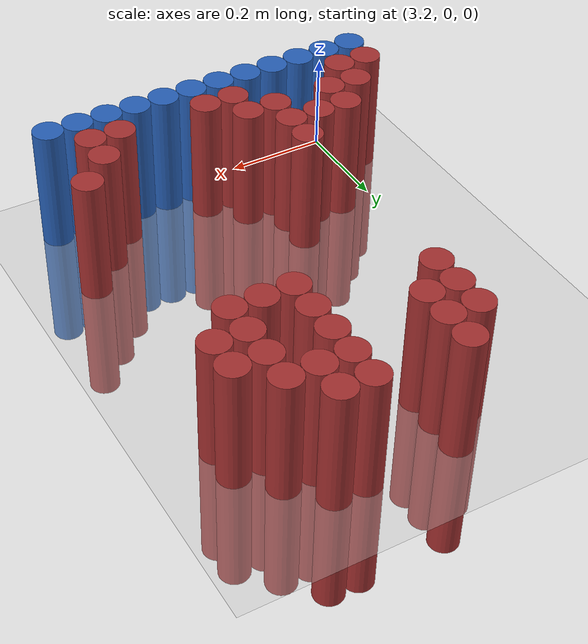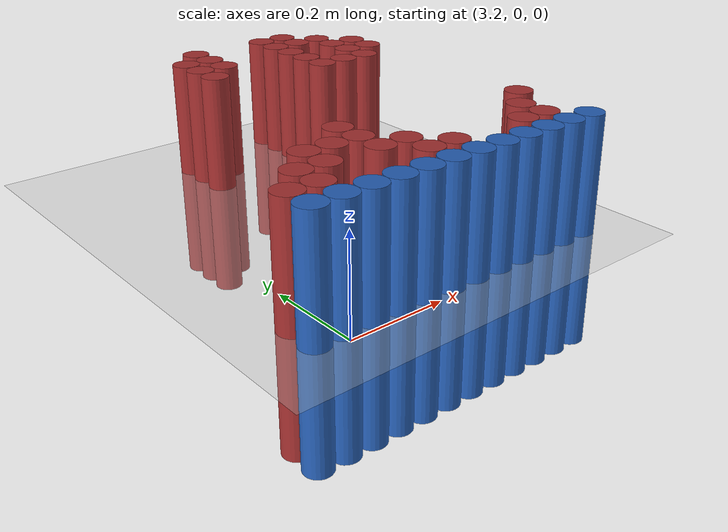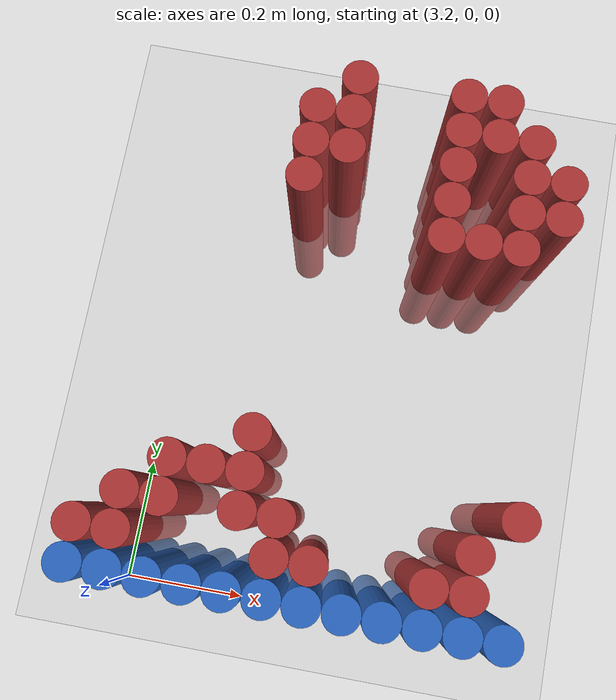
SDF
<sdf version="1.6">
 <world name="default">
  <model name="ground_plane">
   <static>1</static>
   <link name="link">
    <collision name="collision">
     <geometry><plane><normal>0 0 1</normal><size>100 100</size></plane></geometry>
     <surface><friction><ode><mu>100</mu><mu2>50</mu2></ode></friction></surface>
    </collision>
    <visual name="visual">
     <cast_shadows>0</cast_shadows>
     <geometry><plane><normal>0 0 1</normal><size>100 100</size></plane></geometry>
     <material>
      <script><uri>file://media/materials/scripts/gazebo.material</uri><name>Gazebo/Grey</name></script>
     </material>
    </visual>
   </link>
  </model>
  <model name="unit_cylinder_227">
   <static>1</static>
   <pose>3.450000 0.870000 0.000000 0.000000 0.000000 0.000000</pose>
   <link name="link">
    <inertial>
     <mass>1</mass>
     <inertia><ixx>0.145833</ixx><ixy>0</ixy><ixz>0</ixz><iyy>0.145833</iyy><iyz>0</iyz><izz>0.125</izz></inertia>
    </inertial>
    <collision name="collision">
     <geometry><cylinder><radius>0.030000</radius><length>0.5</length></cylinder></geometry>
    </collision>
    <visual name="visual">
     <geometry><cylinder><radius>0.030000</radius><length>0.5</length></cylinder></geometry>
     <material>
      <ambient>0.648000 0.192000 0.192000 1</ambient>
      <diffuse>0.648000 0.192000 0.192000 1</diffuse>
     </material>
     <material>
      <script><name>Gazebo/Grey</name><uri>file://media/materials/scripts/gazebo.material</uri></script>
     </material>
    </visual>
   </link>
  </model>
  <model name="unit_cylinder_228">
   <static>1</static>
   <pose>3.630000 0.870000 0.000000 0.000000 0.000000 0.000000</pose>
   <link name="link">
    <inertial>
     <mass>1</mass>
     <inertia><ixx>0.145833</ixx><ixy>0</ixy><ixz>0</ixz><iyy>0.145833</iyy><iyz>0</iyz><izz>0.125</izz></inertia>
    </inertial>
    <collision name="collision">
     <geometry><cylinder><radius>0.030000</radius><length>0.5</length></cylinder></geometry>
    </collision>
    <visual name="visual">
     <geometry><cylinder><radius>0.030000</radius><length>0.5</length></cylinder></geometry>
     <material>
      <ambient>0.648000 0.192000 0.192000 1</ambient>
      <diffuse>0.648000 0.192000 0.192000 1</diffuse>
     </material>
     <material>
      <script><name>Gazebo/Grey</name><uri>file://media/materials/scripts/gazebo.material</uri></script>
     </material>
    </visual>
   </link>
  </model>
  <model name="unit_cylinder_229">
   <static>1</static>
   <pose>3.690000 0.870000 0.000000 0.000000 0.000000 0.000000</pose>
   <link name="link">
    <inertial>
     <mass>1</mass>
     <inertia><ixx>0.145833</ixx><ixy>0</ixy><ixz>0</ixz><iyy>0.145833</iyy><iyz>0</iyz><izz>0.125</izz></inertia>
    </inertial>
    <collision name="collision">
     <geometry><cylinder><radius>0.030000</radius><length>0.5</length></cylinder></geometry>
    </collision>
    <visual name="visual">
     <geometry><cylinder><radius>0.030000</radius><length>0.5</length></cylinder></geometry>
     <material>
      <ambient>0.648000 0.192000 0.192000 1</ambient>
      <diffuse>0.648000 0.192000 0.192000 1</diffuse>
     </material>
     <material>
      <script><name>Gazebo/Grey</name><uri>file://media/materials/scripts/gazebo.material</uri></script>
     </material>
    </visual>
   </link>
  </model>
  <model name="unit_cylinder_234">
   <static>1</static>
   <pose>3.390000 0.810000 0.000000 0.000000 0.000000 0.000000</pose>
   <link name="link">
    <inertial>
     <mass>1</mass>
     <inertia><ixx>0.145833</ixx><ixy>0</ixy><ixz>0</ixz><iyy>0.145833</iyy><iyz>0</iyz><izz>0.125</izz></inertia>
    </inertial>
    <collision name="collision">
     <geometry><cylinder><radius>0.030000</radius><length>0.5</length></cylinder></geometry>
    </collision>
    <visual name="visual">
     <geometry><cylinder><radius>0.030000</radius><length>0.5</length></cylinder></geometry>
     <material>
      <ambient>0.648000 0.192000 0.192000 1</ambient>
      <diffuse>0.648000 0.192000 0.192000 1</diffuse>
     </material>
     <material>
      <script><name>Gazebo/Grey</name><uri>file://media/materials/scripts/gazebo.material</uri></script>
     </material>
    </visual>
   </link>
  </model>
  <model name="unit_cylinder_235">
   <static>1</static>
   <pose>3.450000 0.810000 0.000000 0.000000 0.000000 0.000000</pose>
   <link name="link">
    <inertial>
     <mass>1</mass>
     <inertia><ixx>0.145833</ixx><ixy>0</ixy><ixz>0</ixz><iyy>0.145833</iyy><iyz>0</iyz><izz>0.125</izz></inertia>
    </inertial>
    <collision name="collision">
     <geometry><cylinder><radius>0.030000</radius><length>0.5</length></cylinder></geometry>
    </collision>
    <visual name="visual">
     <geometry><cylinder><radius>0.030000</radius><length>0.5</length></cylinder></geometry>
     <material>
      <ambient>0.648000 0.192000 0.192000 1</ambient>
      <diffuse>0.648000 0.192000 0.192000 1</diffuse>
     </material>
     <material>
      <script><name>Gazebo/Grey</name><uri>file://media/materials/scripts/gazebo.material</uri></script>
     </material>
    </visual>
   </link>
  </model>
  <model name="unit_cylinder_236">
   <static>1</static>
   <pose>3.630000 0.810000 0.000000 0.000000 0.000000 0.000000</pose>
   <link name="link">
    <inertial>
     <mass>1</mass>
     <inertia><ixx>0.145833</ixx><ixy>0</ixy><ixz>0</ixz><iyy>0.145833</iyy><iyz>0</iyz><izz>0.125</izz></inertia>
    </inertial>
    <collision name="collision">
     <geometry><cylinder><radius>0.030000</radius><length>0.5</length></cylinder></geometry>
    </collision>
    <visual name="visual">
     <geometry><cylinder><radius>0.030000</radius><length>0.5</length></cylinder></geometry>
     <material>
      <ambient>0.648000 0.192000 0.192000 1</ambient>
      <diffuse>0.648000 0.192000 0.192000 1</diffuse>
     </material>
     <material>
      <script><name>Gazebo/Grey</name><uri>file://media/materials/scripts/gazebo.material</uri></script>
     </material>
    </visual>
   </link>
  </model>
  <model name="unit_cylinder_237">
   <static>1</static>
   <pose>3.690000 0.810000 0.000000 0.000000 0.000000 0.000000</pose>
   <link name="link">
    <inertial>
     <mass>1</mass>
     <inertia><ixx>0.145833</ixx><ixy>0</ixy><ixz>0</ixz><iyy>0.145833</iyy><iyz>0</iyz><izz>0.125</izz></inertia>
    </inertial>
    <collision name="collision">
     <geometry><cylinder><radius>0.030000</radius><length>0.5</length></cylinder></geometry>
    </collision>
    <visual name="visual">
     <geometry><cylinder><radius>0.030000</radius><length>0.5</length></cylinder></geometry>
     <material>
      <ambient>0.648000 0.192000 0.192000 1</ambient>
      <diffuse>0.648000 0.192000 0.192000 1</diffuse>
     </material>
     <material>
      <script><name>Gazebo/Grey</name><uri>file://media/materials/scripts/gazebo.material</uri></script>
     </material>
    </visual>
   </link>
  </model>
  <model name="unit_cylinder_238">
   <static>1</static>
   <pose>3.750000 0.810000 0.000000 0.000000 0.000000 0.000000</pose>
   <link name="link">
    <inertial>
     <mass>1</mass>
     <inertia><ixx>0.145833</ixx><ixy>0</ixy><ixz>0</ixz><iyy>0.145833</iyy><iyz>0</iyz><izz>0.125</izz></inertia>
    </inertial>
    <collision name="collision">
     <geometry><cylinder><radius>0.030000</radius><length>0.5</length></cylinder></geometry>
    </collision>
    <visual name="visual">
     <geometry><cylinder><radius>0.030000</radius><length>0.5</length></cylinder></geometry>
     <material>
      <ambient>0.648000 0.192000 0.192000 1</ambient>
      <diffuse>0.648000 0.192000 0.192000 1</diffuse>
     </material>
     <material>
      <script><name>Gazebo/Grey</name><uri>file://media/materials/scripts/gazebo.material</uri></script>
     </material>
    </visual>
   </link>
  </model>
  <model name="unit_cylinder_242">
   <static>1</static>
   <pose>3.390000 0.750000 0.000000 0.000000 0.000000 0.000000</pose>
   <link name="link">
    <inertial>
     <mass>1</mass>
     <inertia><ixx>0.145833</ixx><ixy>0</ixy><ixz>0</ixz><iyy>0.145833</iyy><iyz>0</iyz><izz>0.125</izz></inertia>
    </inertial>
    <collision name="collision">
     <geometry><cylinder><radius>0.030000</radius><length>0.5</length></cylinder></geometry>
    </collision>
    <visual name="visual">
     <geometry><cylinder><radius>0.030000</radius><length>0.5</length></cylinder></geometry>
     <material>
      <ambient>0.648000 0.192000 0.192000 1</ambient>
      <diffuse>0.648000 0.192000 0.192000 1</diffuse>
     </material>
     <material>
      <script><name>Gazebo/Grey</name><uri>file://media/materials/scripts/gazebo.material</uri></script>
     </material>
    </visual>
   </link>
  </model>
  <model name="unit_cylinder_243">
   <static>1</static>
   <pose>3.450000 0.750000 0.000000 0.000000 0.000000 0.000000</pose>
   <link name="link">
    <inertial>
     <mass>1</mass>
     <inertia><ixx>0.145833</ixx><ixy>0</ixy><ixz>0</ixz><iyy>0.145833</iyy><iyz>0</iyz><izz>0.125</izz></inertia>
    </inertial>
    <collision name="collision">
     <geometry><cylinder><radius>0.030000</radius><length>0.5</length></cylinder></geometry>
    </collision>
    <visual name="visual">
     <geometry><cylinder><radius>0.030000</radius><length>0.5</length></cylinder></geometry>
     <material>
      <ambient>0.648000 0.192000 0.192000 1</ambient>
      <diffuse>0.648000 0.192000 0.192000 1</diffuse>
     </material>
     <material>
      <script><name>Gazebo/Grey</name><uri>file://media/materials/scripts/gazebo.material</uri></script>
     </material>
    </visual>
   </link>
  </model>
  <model name="unit_cylinder_244">
   <static>1</static>
   <pose>3.630000 0.750000 0.000000 0.000000 0.000000 0.000000</pose>
   <link name="link">
    <inertial>
     <mass>1</mass>
     <inertia><ixx>0.145833</ixx><ixy>0</ixy><ixz>0</ixz><iyy>0.145833</iyy><iyz>0</iyz><izz>0.125</izz></inertia>
    </inertial>
    <collision name="collision">
     <geometry><cylinder><radius>0.030000</radius><length>0.5</length></cylinder></geometry>
    </collision>
    <visual name="visual">
     <geometry><cylinder><radius>0.030000</radius><length>0.5</length></cylinder></geometry>
     <material>
      <ambient>0.648000 0.192000 0.192000 1</ambient>
      <diffuse>0.648000 0.192000 0.192000 1</diffuse>
     </material>
     <material>
      <script><name>Gazebo/Grey</name><uri>file://media/materials/scripts/gazebo.material</uri></script>
     </material>
    </visual>
   </link>
  </model>
  <model name="unit_cylinder_245">
   <static>1</static>
   <pose>3.750000 0.750000 0.000000 0.000000 0.000000 0.000000</pose>
   <link name="link">
    <inertial>
     <mass>1</mass>
     <inertia><ixx>0.145833</ixx><ixy>0</ixy><ixz>0</ixz><iyy>0.145833</iyy><iyz>0</iyz><izz>0.125</izz></inertia>
    </inertial>
    <collision name="collision">
     <geometry><cylinder><radius>0.030000</radius><length>0.5</length></cylinder></geometry>
    </collision>
    <visual name="visual">
     <geometry><cylinder><radius>0.030000</radius><length>0.5</length></cylinder></geometry>
     <material>
      <ambient>0.648000 0.192000 0.192000 1</ambient>
      <diffuse>0.648000 0.192000 0.192000 1</diffuse>
     </material>
     <material>
      <script><name>Gazebo/Grey</name><uri>file://media/materials/scripts/gazebo.material</uri></script>
     </material>
    </visual>
   </link>
  </model>
  <model name="unit_cylinder_246">
   <static>1</static>
   <pose>3.810000 0.750000 0.000000 0.000000 0.000000 0.000000</pose>
   <link name="link">
    <inertial>
     <mass>1</mass>
     <inertia><ixx>0.145833</ixx><ixy>0</ixy><ixz>0</ixz><iyy>0.145833</iyy><iyz>0</iyz><izz>0.125</izz></inertia>
    </inertial>
    <collision name="collision">
     <geometry><cylinder><radius>0.030000</radius><length>0.5</length></cylinder></geometry>
    </collision>
    <visual name="visual">
     <geometry><cylinder><radius>0.030000</radius><length>0.5</length></cylinder></geometry>
     <material>
      <ambient>0.648000 0.192000 0.192000 1</ambient>
      <diffuse>0.648000 0.192000 0.192000 1</diffuse>
     </material>
     <material>
      <script><name>Gazebo/Grey</name><uri>file://media/materials/scripts/gazebo.material</uri></script>
     </material>
    </visual>
   </link>
  </model>
  <model name="unit_cylinder_250">
   <static>1</static>
   <pose>3.390000 0.690000 0.000000 0.000000 0.000000 0.000000</pose>
   <link name="link">
    <inertial>
     <mass>1</mass>
     <inertia><ixx>0.145833</ixx><ixy>0</ixy><ixz>0</ixz><iyy>0.145833</iyy><iyz>0</iyz><izz>0.125</izz></inertia>
    </inertial>
    <collision name="collision">
     <geometry><cylinder><radius>0.030000</radius><length>0.5</length></cylinder></geometry>
    </collision>
    <visual name="visual">
     <geometry><cylinder><radius>0.030000</radius><length>0.5</length></cylinder></geometry>
     <material>
      <ambient>0.648000 0.192000 0.192000 1</ambient>
      <diffuse>0.648000 0.192000 0.192000 1</diffuse>
     </material>
     <material>
      <script><name>Gazebo/Grey</name><uri>file://media/materials/scripts/gazebo.material</uri></script>
     </material>
    </visual>
   </link>
  </model>
  <model name="unit_cylinder_251">
   <static>1</static>
   <pose>3.630000 0.690000 0.000000 0.000000 0.000000 0.000000</pose>
   <link name="link">
    <inertial>
     <mass>1</mass>
     <inertia><ixx>0.145833</ixx><ixy>0</ixy><ixz>0</ixz><iyy>0.145833</iyy><iyz>0</iyz><izz>0.125</izz></inertia>
    </inertial>
    <collision name="collision">
     <geometry><cylinder><radius>0.030000</radius><length>0.5</length></cylinder></geometry>
    </collision>
    <visual name="visual">
     <geometry><cylinder><radius>0.030000</radius><length>0.5</length></cylinder></geometry>
     <material>
      <ambient>0.648000 0.192000 0.192000 1</ambient>
      <diffuse>0.648000 0.192000 0.192000 1</diffuse>
     </material>
     <material>
      <script><name>Gazebo/Grey</name><uri>file://media/materials/scripts/gazebo.material</uri></script>
     </material>
    </visual>
   </link>
  </model>
  <model name="unit_cylinder_252">
   <static>1</static>
   <pose>3.750000 0.690000 0.000000 0.000000 0.000000 0.000000</pose>
   <link name="link">
    <inertial>
     <mass>1</mass>
     <inertia><ixx>0.145833</ixx><ixy>0</ixy><ixz>0</ixz><iyy>0.145833</iyy><iyz>0</iyz><izz>0.125</izz></inertia>
    </inertial>
    <collision name="collision">
     <geometry><cylinder><radius>0.030000</radius><length>0.5</length></cylinder></geometry>
    </collision>
    <visual name="visual">
     <geometry><cylinder><radius>0.030000</radius><length>0.5</length></cylinder></geometry>
     <material>
      <ambient>0.648000 0.192000 0.192000 1</ambient>
      <diffuse>0.648000 0.192000 0.192000 1</diffuse>
     </material>
     <material>
      <script><name>Gazebo/Grey</name><uri>file://media/materials/scripts/gazebo.material</uri></script>
     </material>
    </visual>
   </link>
  </model>
  <model name="unit_cylinder_253">
   <static>1</static>
   <pose>3.810000 0.690000 0.000000 0.000000 0.000000 0.000000</pose>
   <link name="link">
    <inertial>
     <mass>1</mass>
     <inertia><ixx>0.145833</ixx><ixy>0</ixy><ixz>0</ixz><iyy>0.145833</iyy><iyz>0</iyz><izz>0.125</izz></inertia>
    </inertial>
    <collision name="collision">
     <geometry><cylinder><radius>0.030000</radius><length>0.5</length></cylinder></geometry>
    </collision>
    <visual name="visual">
     <geometry><cylinder><radius>0.030000</radius><length>0.5</length></cylinder></geometry>
     <material>
      <ambient>0.648000 0.192000 0.192000 1</ambient>
      <diffuse>0.648000 0.192000 0.192000 1</diffuse>
     </material>
     <material>
      <script><name>Gazebo/Grey</name><uri>file://media/materials/scripts/gazebo.material</uri></script>
     </material>
    </visual>
   </link>
  </model>
  <model name="unit_cylinder_256">
   <static>1</static>
   <pose>3.630000 0.630000 0.000000 0.000000 0.000000 0.000000</pose>
   <link name="link">
    <inertial>
     <mass>1</mass>
     <inertia><ixx>0.145833</ixx><ixy>0</ixy><ixz>0</ixz><iyy>0.145833</iyy><iyz>0</iyz><izz>0.125</izz></inertia>
    </inertial>
    <collision name="collision">
     <geometry><cylinder><radius>0.030000</radius><length>0.5</length></cylinder></geometry>
    </collision>
    <visual name="visual">
     <geometry><cylinder><radius>0.030000</radius><length>0.5</length></cylinder></geometry>
     <material>
      <ambient>0.648000 0.192000 0.192000 1</ambient>
      <diffuse>0.648000 0.192000 0.192000 1</diffuse>
     </material>
     <material>
      <script><name>Gazebo/Grey</name><uri>file://media/materials/scripts/gazebo.material</uri></script>
     </material>
    </visual>
   </link>
  </model>
  <model name="unit_cylinder_257">
   <static>1</static>
   <pose>3.690000 0.630000 0.000000 0.000000 0.000000 0.000000</pose>
   <link name="link">
    <inertial>
     <mass>1</mass>
     <inertia><ixx>0.145833</ixx><ixy>0</ixy><ixz>0</ixz><iyy>0.145833</iyy><iyz>0</iyz><izz>0.125</izz></inertia>
    </inertial>
    <collision name="collision">
     <geometry><cylinder><radius>0.030000</radius><length>0.5</length></cylinder></geometry>
    </collision>
    <visual name="visual">
     <geometry><cylinder><radius>0.030000</radius><length>0.5</length></cylinder></geometry>
     <material>
      <ambient>0.648000 0.192000 0.192000 1</ambient>
      <diffuse>0.648000 0.192000 0.192000 1</diffuse>
     </material>
     <material>
      <script><name>Gazebo/Grey</name><uri>file://media/materials/scripts/gazebo.material</uri></script>
     </material>
    </visual>
   </link>
  </model>
  <model name="unit_cylinder_258">
   <static>1</static>
   <pose>3.750000 0.630000 0.000000 0.000000 0.000000 0.000000</pose>
   <link name="link">
    <inertial>
     <mass>1</mass>
     <inertia><ixx>0.145833</ixx><ixy>0</ixy><ixz>0</ixz><iyy>0.145833</iyy><iyz>0</iyz><izz>0.125</izz></inertia>
    </inertial>
    <collision name="collision">
     <geometry><cylinder><radius>0.030000</radius><length>0.5</length></cylinder></geometry>
    </collision>
    <visual name="visual">
     <geometry><cylinder><radius>0.030000</radius><length>0.5</length></cylinder></geometry>
     <material>
      <ambient>0.648000 0.192000 0.192000 1</ambient>
      <diffuse>0.648000 0.192000 0.192000 1</diffuse>
     </material>
     <material>
      <script><name>Gazebo/Grey</name><uri>file://media/materials/scripts/gazebo.material</uri></script>
     </material>
    </visual>
   </link>
  </model>
  <model name="unit_cylinder_278">
   <static>1</static>
   <pose>3.390000 0.270000 0.000000 0.000000 0.000000 0.000000</pose>
   <link name="link">
    <inertial>
     <mass>1</mass>
     <inertia><ixx>0.145833</ixx><ixy>0</ixy><ixz>0</ixz><iyy>0.145833</iyy><iyz>0</iyz><izz>0.125</izz></inertia>
    </inertial>
    <collision name="collision">
     <geometry><cylinder><radius>0.030000</radius><length>0.5</length></cylinder></geometry>
    </collision>
    <visual name="visual">
     <geometry><cylinder><radius>0.030000</radius><length>0.5</length></cylinder></geometry>
     <material>
      <ambient>0.648000 0.192000 0.192000 1</ambient>
      <diffuse>0.648000 0.192000 0.192000 1</diffuse>
     </material>
     <material>
      <script><name>Gazebo/Grey</name><uri>file://media/materials/scripts/gazebo.material</uri></script>
     </material>
    </visual>
   </link>
  </model>
  <model name="unit_cylinder_280">
   <static>1</static>
   <pose>3.270000 0.210000 0.000000 0.000000 0.000000 0.000000</pose>
   <link name="link">
    <inertial>
     <mass>1</mass>
     <inertia><ixx>0.145833</ixx><ixy>0</ixy><ixz>0</ixz><iyy>0.145833</iyy><iyz>0</iyz><izz>0.125</izz></inertia>
    </inertial>
    <collision name="collision">
     <geometry><cylinder><radius>0.030000</radius><length>0.5</length></cylinder></geometry>
    </collision>
    <visual name="visual">
     <geometry><cylinder><radius>0.030000</radius><length>0.5</length></cylinder></geometry>
     <material>
      <ambient>0.648000 0.192000 0.192000 1</ambient>
      <diffuse>0.648000 0.192000 0.192000 1</diffuse>
     </material>
     <material>
      <script><name>Gazebo/Grey</name><uri>file://media/materials/scripts/gazebo.material</uri></script>
     </material>
    </visual>
   </link>
  </model>
  <model name="unit_cylinder_281">
   <static>1</static>
   <pose>3.330000 0.210000 0.000000 0.000000 0.000000 0.000000</pose>
   <link name="link">
    <inertial>
     <mass>1</mass>
     <inertia><ixx>0.145833</ixx><ixy>0</ixy><ixz>0</ixz><iyy>0.145833</iyy><iyz>0</iyz><izz>0.125</izz></inertia>
    </inertial>
    <collision name="collision">
     <geometry><cylinder><radius>0.030000</radius><length>0.5</length></cylinder></geometry>
    </collision>
    <visual name="visual">
     <geometry><cylinder><radius>0.030000</radius><length>0.5</length></cylinder></geometry>
     <material>
      <ambient>0.648000 0.192000 0.192000 1</ambient>
      <diffuse>0.648000 0.192000 0.192000 1</diffuse>
     </material>
     <material>
      <script><name>Gazebo/Grey</name><uri>file://media/materials/scripts/gazebo.material</uri></script>
     </material>
    </visual>
   </link>
  </model>
  <model name="unit_cylinder_282">
   <static>1</static>
   <pose>3.390000 0.210000 0.000000 0.000000 0.000000 0.000000</pose>
   <link name="link">
    <inertial>
     <mass>1</mass>
     <inertia><ixx>0.145833</ixx><ixy>0</ixy><ixz>0</ixz><iyy>0.145833</iyy><iyz>0</iyz><izz>0.125</izz></inertia>
    </inertial>
    <collision name="collision">
     <geometry><cylinder><radius>0.030000</radius><length>0.5</length></cylinder></geometry>
    </collision>
    <visual name="visual">
     <geometry><cylinder><radius>0.030000</radius><length>0.5</length></cylinder></geometry>
     <material>
      <ambient>0.648000 0.192000 0.192000 1</ambient>
      <diffuse>0.648000 0.192000 0.192000 1</diffuse>
     </material>
     <material>
      <script><name>Gazebo/Grey</name><uri>file://media/materials/scripts/gazebo.material</uri></script>
     </material>
    </visual>
   </link>
  </model>
  <model name="unit_cylinder_283">
   <static>1</static>
   <pose>3.810000 0.210000 0.000000 0.000000 0.000000 0.000000</pose>
   <link name="link">
    <inertial>
     <mass>1</mass>
     <inertia><ixx>0.145833</ixx><ixy>0</ixy><ixz>0</ixz><iyy>0.145833</iyy><iyz>0</iyz><izz>0.125</izz></inertia>
    </inertial>
    <collision name="collision">
     <geometry><cylinder><radius>0.030000</radius><length>0.5</length></cylinder></geometry>
    </collision>
    <visual name="visual">
     <geometry><cylinder><radius>0.030000</radius><length>0.5</length></cylinder></geometry>
     <material>
      <ambient>0.648000 0.192000 0.192000 1</ambient>
      <diffuse>0.648000 0.192000 0.192000 1</diffuse>
     </material>
     <material>
      <script><name>Gazebo/Grey</name><uri>file://media/materials/scripts/gazebo.material</uri></script>
     </material>
    </visual>
   </link>
  </model>
  <model name="unit_cylinder_287">
   <static>1</static>
   <pose>3.210000 0.150000 0.000000 0.000000 0.000000 0.000000</pose>
   <link name="link">
    <inertial>
     <mass>1</mass>
     <inertia><ixx>0.145833</ixx><ixy>0</ixy><ixz>0</ixz><iyy>0.145833</iyy><iyz>0</iyz><izz>0.125</izz></inertia>
    </inertial>
    <collision name="collision">
     <geometry><cylinder><radius>0.030000</radius><length>0.5</length></cylinder></geometry>
    </collision>
    <visual name="visual">
     <geometry><cylinder><radius>0.030000</radius><length>0.5</length></cylinder></geometry>
     <material>
      <ambient>0.648000 0.192000 0.192000 1</ambient>
      <diffuse>0.648000 0.192000 0.192000 1</diffuse>
     </material>
     <material>
      <script><name>Gazebo/Grey</name><uri>file://media/materials/scripts/gazebo.material</uri></script>
     </material>
    </visual>
   </link>
  </model>
  <model name="unit_cylinder_288">
   <static>1</static>
   <pose>3.270000 0.150000 0.000000 0.000000 0.000000 0.000000</pose>
   <link name="link">
    <inertial>
     <mass>1</mass>
     <inertia><ixx>0.145833</ixx><ixy>0</ixy><ixz>0</ixz><iyy>0.145833</iyy><iyz>0</iyz><izz>0.125</izz></inertia>
    </inertial>
    <collision name="collision">
     <geometry><cylinder><radius>0.030000</radius><length>0.5</length></cylinder></geometry>
    </collision>
    <visual name="visual">
     <geometry><cylinder><radius>0.030000</radius><length>0.5</length></cylinder></geometry>
     <material>
      <ambient>0.648000 0.192000 0.192000 1</ambient>
      <diffuse>0.648000 0.192000 0.192000 1</diffuse>
     </material>
     <material>
      <script><name>Gazebo/Grey</name><uri>file://media/materials/scripts/gazebo.material</uri></script>
     </material>
    </visual>
   </link>
  </model>
  <model name="unit_cylinder_289">
   <static>1</static>
   <pose>3.390000 0.150000 0.000000 0.000000 0.000000 0.000000</pose>
   <link name="link">
    <inertial>
     <mass>1</mass>
     <inertia><ixx>0.145833</ixx><ixy>0</ixy><ixz>0</ixz><iyy>0.145833</iyy><iyz>0</iyz><izz>0.125</izz></inertia>
    </inertial>
    <collision name="collision">
     <geometry><cylinder><radius>0.030000</radius><length>0.5</length></cylinder></geometry>
    </collision>
    <visual name="visual">
     <geometry><cylinder><radius>0.030000</radius><length>0.5</length></cylinder></geometry>
     <material>
      <ambient>0.648000 0.192000 0.192000 1</ambient>
      <diffuse>0.648000 0.192000 0.192000 1</diffuse>
     </material>
     <material>
      <script><name>Gazebo/Grey</name><uri>file://media/materials/scripts/gazebo.material</uri></script>
     </material>
    </visual>
   </link>
  </model>
  <model name="unit_cylinder_290">
   <static>1</static>
   <pose>3.450000 0.150000 0.000000 0.000000 0.000000 0.000000</pose>
   <link name="link">
    <inertial>
     <mass>1</mass>
     <inertia><ixx>0.145833</ixx><ixy>0</ixy><ixz>0</ixz><iyy>0.145833</iyy><iyz>0</iyz><izz>0.125</izz></inertia>
    </inertial>
    <collision name="collision">
     <geometry><cylinder><radius>0.030000</radius><length>0.5</length></cylinder></geometry>
    </collision>
    <visual name="visual">
     <geometry><cylinder><radius>0.030000</radius><length>0.5</length></cylinder></geometry>
     <material>
      <ambient>0.648000 0.192000 0.192000 1</ambient>
      <diffuse>0.648000 0.192000 0.192000 1</diffuse>
     </material>
     <material>
      <script><name>Gazebo/Grey</name><uri>file://media/materials/scripts/gazebo.material</uri></script>
     </material>
    </visual>
   </link>
  </model>
  <model name="unit_cylinder_291">
   <static>1</static>
   <pose>3.750000 0.150000 0.000000 0.000000 0.000000 0.000000</pose>
   <link name="link">
    <inertial>
     <mass>1</mass>
     <inertia><ixx>0.145833</ixx><ixy>0</ixy><ixz>0</ixz><iyy>0.145833</iyy><iyz>0</iyz><izz>0.125</izz></inertia>
    </inertial>
    <collision name="collision">
     <geometry><cylinder><radius>0.030000</radius><length>0.5</length></cylinder></geometry>
    </collision>
    <visual name="visual">
     <geometry><cylinder><radius>0.030000</radius><length>0.5</length></cylinder></geometry>
     <material>
      <ambient>0.648000 0.192000 0.192000 1</ambient>
      <diffuse>0.648000 0.192000 0.192000 1</diffuse>
     </material>
     <material>
      <script><name>Gazebo/Grey</name><uri>file://media/materials/scripts/gazebo.material</uri></script>
     </material>
    </visual>
   </link>
  </model>
  <model name="unit_cylinder_302">
   <static>1</static>
   <pose>3.150000 0.090000 0.000000 0.000000 0.000000 0.000000</pose>
   <link name="link">
    <inertial>
     <mass>1</mass>
     <inertia><ixx>0.145833</ixx><ixy>0</ixy><ixz>0</ixz><iyy>0.145833</iyy><iyz>0</iyz><izz>0.125</izz></inertia>
    </inertial>
    <collision name="collision">
     <geometry><cylinder><radius>0.030000</radius><length>0.5</length></cylinder></geometry>
    </collision>
    <visual name="visual">
     <geometry><cylinder><radius>0.030000</radius><length>0.5</length></cylinder></geometry>
     <material>
      <ambient>0.648000 0.192000 0.192000 1</ambient>
      <diffuse>0.648000 0.192000 0.192000 1</diffuse>
     </material>
     <material>
      <script><name>Gazebo/Grey</name><uri>file://media/materials/scripts/gazebo.material</uri></script>
     </material>
    </visual>
   </link>
  </model>
  <model name="unit_cylinder_303">
   <static>1</static>
   <pose>3.210000 0.090000 0.000000 0.000000 0.000000 0.000000</pose>
   <link name="link">
    <inertial>
     <mass>1</mass>
     <inertia><ixx>0.145833</ixx><ixy>0</ixy><ixz>0</ixz><iyy>0.145833</iyy><iyz>0</iyz><izz>0.125</izz></inertia>
    </inertial>
    <collision name="collision">
     <geometry><cylinder><radius>0.030000</radius><length>0.5</length></cylinder></geometry>
    </collision>
    <visual name="visual">
     <geometry><cylinder><radius>0.030000</radius><length>0.5</length></cylinder></geometry>
     <material>
      <ambient>0.648000 0.192000 0.192000 1</ambient>
      <diffuse>0.648000 0.192000 0.192000 1</diffuse>
     </material>
     <material>
      <script><name>Gazebo/Grey</name><uri>file://media/materials/scripts/gazebo.material</uri></script>
     </material>
    </visual>
   </link>
  </model>
  <model name="unit_cylinder_304">
   <static>1</static>
   <pose>3.450000 0.090000 0.000000 0.000000 0.000000 0.000000</pose>
   <link name="link">
    <inertial>
     <mass>1</mass>
     <inertia><ixx>0.145833</ixx><ixy>0</ixy><ixz>0</ixz><iyy>0.145833</iyy><iyz>0</iyz><izz>0.125</izz></inertia>
    </inertial>
    <collision name="collision">
     <geometry><cylinder><radius>0.030000</radius><length>0.5</length></cylinder></geometry>
    </collision>
    <visual name="visual">
     <geometry><cylinder><radius>0.030000</radius><length>0.5</length></cylinder></geometry>
     <material>
      <ambient>0.648000 0.192000 0.192000 1</ambient>
      <diffuse>0.648000 0.192000 0.192000 1</diffuse>
     </material>
     <material>
      <script><name>Gazebo/Grey</name><uri>file://media/materials/scripts/gazebo.material</uri></script>
     </material>
    </visual>
   </link>
  </model>
  <model name="unit_cylinder_305">
   <static>1</static>
   <pose>3.510000 0.090000 0.000000 0.000000 0.000000 0.000000</pose>
   <link name="link">
    <inertial>
     <mass>1</mass>
     <inertia><ixx>0.145833</ixx><ixy>0</ixy><ixz>0</ixz><iyy>0.145833</iyy><iyz>0</iyz><izz>0.125</izz></inertia>
    </inertial>
    <collision name="collision">
     <geometry><cylinder><radius>0.030000</radius><length>0.5</length></cylinder></geometry>
    </collision>
    <visual name="visual">
     <geometry><cylinder><radius>0.030000</radius><length>0.5</length></cylinder></geometry>
     <material>
      <ambient>0.648000 0.192000 0.192000 1</ambient>
      <diffuse>0.648000 0.192000 0.192000 1</diffuse>
     </material>
     <material>
      <script><name>Gazebo/Grey</name><uri>file://media/materials/scripts/gazebo.material</uri></script>
     </material>
    </visual>
   </link>
  </model>
  <model name="unit_cylinder_306">
   <static>1</static>
   <pose>3.690000 0.090000 0.000000 0.000000 0.000000 0.000000</pose>
   <link name="link">
    <inertial>
     <mass>1</mass>
     <inertia><ixx>0.145833</ixx><ixy>0</ixy><ixz>0</ixz><iyy>0.145833</iyy><iyz>0</iyz><izz>0.125</izz></inertia>
    </inertial>
    <collision name="collision">
     <geometry><cylinder><radius>0.030000</radius><length>0.5</length></cylinder></geometry>
    </collision>
    <visual name="visual">
     <geometry><cylinder><radius>0.030000</radius><length>0.5</length></cylinder></geometry>
     <material>
      <ambient>0.648000 0.192000 0.192000 1</ambient>
      <diffuse>0.648000 0.192000 0.192000 1</diffuse>
     </material>
     <material>
      <script><name>Gazebo/Grey</name><uri>file://media/materials/scripts/gazebo.material</uri></script>
     </material>
    </visual>
   </link>
  </model>
  <model name="unit_cylinder_307">
   <static>1</static>
   <pose>3.750000 0.090000 0.000000 0.000000 0.000000 0.000000</pose>
   <link name="link">
    <inertial>
     <mass>1</mass>
     <inertia><ixx>0.145833</ixx><ixy>0</ixy><ixz>0</ixz><iyy>0.145833</iyy><iyz>0</iyz><izz>0.125</izz></inertia>
    </inertial>
    <collision name="collision">
     <geometry><cylinder><radius>0.030000</radius><length>0.5</length></cylinder></geometry>
    </collision>
    <visual name="visual">
     <geometry><cylinder><radius>0.030000</radius><length>0.5</length></cylinder></geometry>
     <material>
      <ambient>0.648000 0.192000 0.192000 1</ambient>
      <diffuse>0.648000 0.192000 0.192000 1</diffuse>
     </material>
     <material>
      <script><name>Gazebo/Grey</name><uri>file://media/materials/scripts/gazebo.material</uri></script>
     </material>
    </visual>
   </link>
  </model>
  <model name="unit_cylinder_326">
   <static>1</static>
   <pose>3.150000 0.030000 0.000000 0.000000 0.000000 0.000000</pose>
   <link name="link">
    <inertial>
     <mass>1</mass>
     <inertia><ixx>0.145833</ixx><ixy>0</ixy><ixz>0</ixz><iyy>0.145833</iyy><iyz>0</iyz><izz>0.125</izz></inertia>
    </inertial>
    <collision name="collision">
     <geometry><cylinder><radius>0.030000</radius><length>0.5</length></cylinder></geometry>
    </collision>
    <visual name="visual">
     <geometry><cylinder><radius>0.030000</radius><length>0.5</length></cylinder></geometry>
     <material>
      <ambient>0.152000 0.379000 0.720000 1</ambient>
      <diffuse>0.152000 0.379000 0.720000 1</diffuse>
     </material>
     <material>
      <script><name>Gazebo/Grey</name><uri>file://media/materials/scripts/gazebo.material</uri></script>
     </material>
    </visual>
   </link>
  </model>
  <model name="unit_cylinder_327">
   <static>1</static>
   <pose>3.210000 0.030000 0.000000 0.000000 0.000000 0.000000</pose>
   <link name="link">
    <inertial>
     <mass>1</mass>
     <inertia><ixx>0.145833</ixx><ixy>0</ixy><ixz>0</ixz><iyy>0.145833</iyy><iyz>0</iyz><izz>0.125</izz></inertia>
    </inertial>
    <collision name="collision">
     <geometry><cylinder><radius>0.030000</radius><length>0.5</length></cylinder></geometry>
    </collision>
    <visual name="visual">
     <geometry><cylinder><radius>0.030000</radius><length>0.5</length></cylinder></geometry>
     <material>
      <ambient>0.152000 0.379000 0.720000 1</ambient>
      <diffuse>0.152000 0.379000 0.720000 1</diffuse>
     </material>
     <material>
      <script><name>Gazebo/Grey</name><uri>file://media/materials/scripts/gazebo.material</uri></script>
     </material>
    </visual>
   </link>
  </model>
  <model name="unit_cylinder_328">
   <static>1</static>
   <pose>3.270000 0.030000 0.000000 0.000000 0.000000 0.000000</pose>
   <link name="link">
    <inertial>
     <mass>1</mass>
     <inertia><ixx>0.145833</ixx><ixy>0</ixy><ixz>0</ixz><iyy>0.145833</iyy><iyz>0</iyz><izz>0.125</izz></inertia>
    </inertial>
    <collision name="collision">
     <geometry><cylinder><radius>0.030000</radius><length>0.5</length></cylinder></geometry>
    </collision>
    <visual name="visual">
     <geometry><cylinder><radius>0.030000</radius><length>0.5</length></cylinder></geometry>
     <material>
      <ambient>0.152000 0.379000 0.720000 1</ambient>
      <diffuse>0.152000 0.379000 0.720000 1</diffuse>
     </material>
     <material>
      <script><name>Gazebo/Grey</name><uri>file://media/materials/scripts/gazebo.material</uri></script>
     </material>
    </visual>
   </link>
  </model>
  <model name="unit_cylinder_329">
   <static>1</static>
   <pose>3.330000 0.030000 0.000000 0.000000 0.000000 0.000000</pose>
   <link name="link">
    <inertial>
     <mass>1</mass>
     <inertia><ixx>0.145833</ixx><ixy>0</ixy><ixz>0</ixz><iyy>0.145833</iyy><iyz>0</iyz><izz>0.125</izz></inertia>
    </inertial>
    <collision name="collision">
     <geometry><cylinder><radius>0.030000</radius><length>0.5</length></cylinder></geometry>
    </collision>
    <visual name="visual">
     <geometry><cylinder><radius>0.030000</radius><length>0.5</length></cylinder></geometry>
     <material>
      <ambient>0.152000 0.379000 0.720000 1</ambient>
      <diffuse>0.152000 0.379000 0.720000 1</diffuse>
     </material>
     <material>
      <script><name>Gazebo/Grey</name><uri>file://media/materials/scripts/gazebo.material</uri></script>
     </material>
    </visual>
   </link>
  </model>
  <model name="unit_cylinder_330">
   <static>1</static>
   <pose>3.390000 0.030000 0.000000 0.000000 0.000000 0.000000</pose>
   <link name="link">
    <inertial>
     <mass>1</mass>
     <inertia><ixx>0.145833</ixx><ixy>0</ixy><ixz>0</ixz><iyy>0.145833</iyy><iyz>0</iyz><izz>0.125</izz></inertia>
    </inertial>
    <collision name="collision">
     <geometry><cylinder><radius>0.030000</radius><length>0.5</length></cylinder></geometry>
    </collision>
    <visual name="visual">
     <geometry><cylinder><radius>0.030000</radius><length>0.5</length></cylinder></geometry>
     <material>
      <ambient>0.152000 0.379000 0.720000 1</ambient>
      <diffuse>0.152000 0.379000 0.720000 1</diffuse>
     </material>
     <material>
      <script><name>Gazebo/Grey</name><uri>file://media/materials/scripts/gazebo.material</uri></script>
     </material>
    </visual>
   </link>
  </model>
  <model name="unit_cylinder_331">
   <static>1</static>
   <pose>3.450000 0.030000 0.000000 0.000000 0.000000 0.000000</pose>
   <link name="link">
    <inertial>
     <mass>1</mass>
     <inertia><ixx>0.145833</ixx><ixy>0</ixy><ixz>0</ixz><iyy>0.145833</iyy><iyz>0</iyz><izz>0.125</izz></inertia>
    </inertial>
    <collision name="collision">
     <geometry><cylinder><radius>0.030000</radius><length>0.5</length></cylinder></geometry>
    </collision>
    <visual name="visual">
     <geometry><cylinder><radius>0.030000</radius><length>0.5</length></cylinder></geometry>
     <material>
      <ambient>0.152000 0.379000 0.720000 1</ambient>
      <diffuse>0.152000 0.379000 0.720000 1</diffuse>
     </material>
     <material>
      <script><name>Gazebo/Grey</name><uri>file://media/materials/scripts/gazebo.material</uri></script>
     </material>
    </visual>
   </link>
  </model>
  <model name="unit_cylinder_332">
   <static>1</static>
   <pose>3.510000 0.030000 0.000000 0.000000 0.000000 0.000000</pose>
   <link name="link">
    <inertial>
     <mass>1</mass>
     <inertia><ixx>0.145833</ixx><ixy>0</ixy><ixz>0</ixz><iyy>0.145833</iyy><iyz>0</iyz><izz>0.125</izz></inertia>
    </inertial>
    <collision name="collision">
     <geometry><cylinder><radius>0.030000</radius><length>0.5</length></cylinder></geometry>
    </collision>
    <visual name="visual">
     <geometry><cylinder><radius>0.030000</radius><length>0.5</length></cylinder></geometry>
     <material>
      <ambient>0.152000 0.379000 0.720000 1</ambient>
      <diffuse>0.152000 0.379000 0.720000 1</diffuse>
     </material>
     <material>
      <script><name>Gazebo/Grey</name><uri>file://media/materials/scripts/gazebo.material</uri></script>
     </material>
    </visual>
   </link>
  </model>
  <model name="unit_cylinder_333">
   <static>1</static>
   <pose>3.570000 0.030000 0.000000 0.000000 0.000000 0.000000</pose>
   <link name="link">
    <inertial>
     <mass>1</mass>
     <inertia><ixx>0.145833</ixx><ixy>0</ixy><ixz>0</ixz><iyy>0.145833</iyy><iyz>0</iyz><izz>0.125</izz></inertia>
    </inertial>
    <collision name="collision">
     <geometry><cylinder><radius>0.030000</radius><length>0.5</length></cylinder></geometry>
    </collision>
    <visual name="visual">
     <geometry><cylinder><radius>0.030000</radius><length>0.5</length></cylinder></geometry>
     <material>
      <ambient>0.152000 0.379000 0.720000 1</ambient>
      <diffuse>0.152000 0.379000 0.720000 1</diffuse>
     </material>
     <material>
      <script><name>Gazebo/Grey</name><uri>file://media/materials/scripts/gazebo.material</uri></script>
     </material>
    </visual>
   </link>
  </model>
  <model name="unit_cylinder_334">
   <static>1</static>
   <pose>3.630000 0.030000 0.000000 0.000000 0.000000 0.000000</pose>
   <link name="link">
    <inertial>
     <mass>1</mass>
     <inertia><ixx>0.145833</ixx><ixy>0</ixy><ixz>0</ixz><iyy>0.145833</iyy><iyz>0</iyz><izz>0.125</izz></inertia>
    </inertial>
    <collision name="collision">
     <geometry><cylinder><radius>0.030000</radius><length>0.5</length></cylinder></geometry>
    </collision>
    <visual name="visual">
     <geometry><cylinder><radius>0.030000</radius><length>0.5</length></cylinder></geometry>
     <material>
      <ambient>0.152000 0.379000 0.720000 1</ambient>
      <diffuse>0.152000 0.379000 0.720000 1</diffuse>
     </material>
     <material>
      <script><name>Gazebo/Grey</name><uri>file://media/materials/scripts/gazebo.material</uri></script>
     </material>
    </visual>
   </link>
  </model>
  <model name="unit_cylinder_335">
   <static>1</static>
   <pose>3.690000 0.030000 0.000000 0.000000 0.000000 0.000000</pose>
   <link name="link">
    <inertial>
     <mass>1</mass>
     <inertia><ixx>0.145833</ixx><ixy>0</ixy><ixz>0</ixz><iyy>0.145833</iyy><iyz>0</iyz><izz>0.125</izz></inertia>
    </inertial>
    <collision name="collision">
     <geometry><cylinder><radius>0.030000</radius><length>0.5</length></cylinder></geometry>
    </collision>
    <visual name="visual">
     <geometry><cylinder><radius>0.030000</radius><length>0.5</length></cylinder></geometry>
     <material>
      <ambient>0.152000 0.379000 0.720000 1</ambient>
      <diffuse>0.152000 0.379000 0.720000 1</diffuse>
     </material>
     <material>
      <script><name>Gazebo/Grey</name><uri>file://media/materials/scripts/gazebo.material</uri></script>
     </material>
    </visual>
   </link>
  </model>
  <model name="unit_cylinder_336">
   <static>1</static>
   <pose>3.750000 0.030000 0.000000 0.000000 0.000000 0.000000</pose>
   <link name="link">
    <inertial>
     <mass>1</mass>
     <inertia><ixx>0.145833</ixx><ixy>0</ixy><ixz>0</ixz><iyy>0.145833</iyy><iyz>0</iyz><izz>0.125</izz></inertia>
    </inertial>
    <collision name="collision">
     <geometry><cylinder><radius>0.030000</radius><length>0.5</length></cylinder></geometry>
    </collision>
    <visual name="visual">
     <geometry><cylinder><radius>0.030000</radius><length>0.5</length></cylinder></geometry>
     <material>
      <ambient>0.152000 0.379000 0.720000 1</ambient>
      <diffuse>0.152000 0.379000 0.720000 1</diffuse>
     </material>
     <material>
      <script><name>Gazebo/Grey</name><uri>file://media/materials/scripts/gazebo.material</uri></script>
     </material>
    </visual>
   </link>
  </model>
  <model name="unit_cylinder_337">
   <static>1</static>
   <pose>3.810000 0.030000 0.000000 0.000000 0.000000 0.000000</pose>
   <link name="link">
    <inertial>
     <mass>1</mass>
     <inertia><ixx>0.145833</ixx><ixy>0</ixy><ixz>0</ixz><iyy>0.145833</iyy><iyz>0</iyz><izz>0.125</izz></inertia>
    </inertial>
    <collision name="collision">
     <geometry><cylinder><radius>0.030000</radius><length>0.5</length></cylinder></geometry>
    </collision>
    <visual name="visual">
     <geometry><cylinder><radius>0.030000</radius><length>0.5</length></cylinder></geometry>
     <material>
      <ambient>0.152000 0.379000 0.720000 1</ambient>
      <diffuse>0.152000 0.379000 0.720000 1</diffuse>
     </material>
     <material>
      <script><name>Gazebo/Grey</name><uri>file://media/materials/scripts/gazebo.material</uri></script>
     </material>
    </visual>
   </link>
  </model>
 </world>
</sdf>
